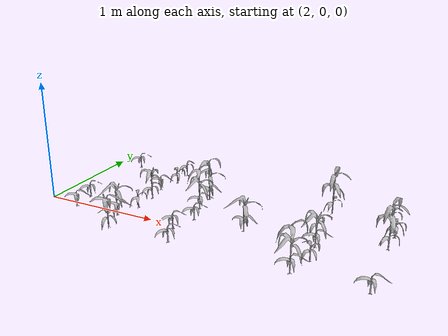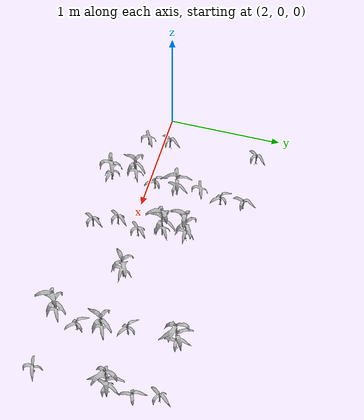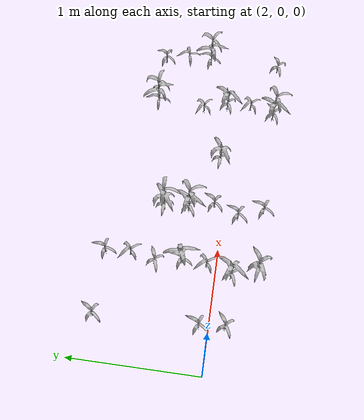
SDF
<sdf version="1.7">
 <world name="default">
  <model name="maize_2.363088277416104_-0.1200000000000001">
   <static>1</static>
   <link name="link">
    <inertial>
     <mass>0.2</mass>
     <inertia>
      <ixx>0.166667</ixx>
      <ixy>0</ixy>
      <ixz>0</ixz>
      <iyy>0.166667</iyy>
      <iyz>0</iyz>
      <izz>0.166667</izz>
     </inertia>
    </inertial>
    <collision name="collision">
     <geometry><mesh><uri>model://corn_3/meshes/corn.dae</uri><scale>0.25 0.25 0.25</scale></mesh></geometry>
     <surface>
      <friction><ode><mu>0</mu><mu2>0</mu2></ode></friction>
      <contact><ode><kp>0</kp><kd>0</kd><max_vel>0</max_vel><min_depth>0.002</min_depth></ode></contact>
     </surface>
    </collision>
    <visual name="visual">
     <geometry><mesh><uri>model://corn_3/meshes/corn.dae</uri><scale>0.25 0.25 0.25</scale></mesh></geometry>
    </visual>
    <velocity_decay><linear>0</linear><angular>0</angular></velocity_decay>
   </link>
   <pose>2.36309 -0.12 0.05 0 -0 0.562316</pose>
  </model>
  <model name="maize_2.345610720444071_0.07500000000000018">
   <static>1</static>
   <link name="link">
    <inertial>
     <mass>0.2</mass>
     <inertia>
      <ixx>0.166667</ixx>
      <ixy>0</ixy>
      <ixz>0</ixz>
      <iyy>0.166667</iyy>
      <iyz>0</iyz>
      <izz>0.166667</izz>
     </inertia>
    </inertial>
    <collision name="collision">
     <geometry><mesh><uri>model://corn_3/meshes/corn.dae</uri><scale>0.25 0.25 0.25</scale></mesh></geometry>
     <surface>
      <friction><ode><mu>0</mu><mu2>0</mu2></ode></friction>
      <contact><ode><kp>0</kp><kd>0</kd><max_vel>0</max_vel><min_depth>0.002</min_depth></ode></contact>
     </surface>
    </collision>
    <visual name="visual">
     <geometry><mesh><uri>model://corn_3/meshes/corn.dae</uri><scale>0.25 0.25 0.25</scale></mesh></geometry>
    </visual>
    <velocity_decay><linear>0</linear><angular>0</angular></velocity_decay>
   </link>
   <pose>2.34561 0.075 0.05 0 -0 1.12158</pose>
  </model>
  <model name="maize_2.327715834010743_0.8550000000000004">
   <static>1</static>
   <link name="link">
    <inertial>
     <mass>0.2</mass>
     <inertia>
      <ixx>0.166667</ixx>
      <ixy>0</ixy>
      <ixz>0</ixz>
      <iyy>0.166667</iyy>
      <iyz>0</iyz>
      <izz>0.166667</izz>
     </inertia>
    </inertial>
    <collision name="collision">
     <geometry><mesh><uri>model://corn_3/meshes/corn.dae</uri><scale>0.25 0.25 0.25</scale></mesh></geometry>
     <surface>
      <friction><ode><mu>0</mu><mu2>0</mu2></ode></friction>
      <contact><ode><kp>0</kp><kd>0</kd><max_vel>0</max_vel><min_depth>0.002</min_depth></ode></contact>
     </surface>
    </collision>
    <visual name="visual">
     <geometry><mesh><uri>model://corn_3/meshes/corn.dae</uri><scale>0.25 0.25 0.25</scale></mesh></geometry>
    </visual>
    <velocity_decay><linear>0</linear><angular>0</angular></velocity_decay>
   </link>
   <pose>2.32772 0.855 0.05 0 -0 0.952764</pose>
  </model>
  <model name="maize_2.832286608606112_-0.3149999999999995">
   <static>1</static>
   <link name="link">
    <inertial>
     <mass>0.2</mass>
     <inertia>
      <ixx>0.166667</ixx>
      <ixy>0</ixy>
      <ixz>0</ixz>
      <iyy>0.166667</iyy>
      <iyz>0</iyz>
      <izz>0.166667</izz>
     </inertia>
    </inertial>
    <collision name="collision">
     <geometry><mesh><uri>model://corn_4/meshes/corn.dae</uri><scale>0.25 0.25 0.25</scale></mesh></geometry>
     <surface>
      <friction><ode><mu>0</mu><mu2>0</mu2></ode></friction>
      <contact><ode><kp>0</kp><kd>0</kd><max_vel>0</max_vel><min_depth>0.002</min_depth></ode></contact>
     </surface>
    </collision>
    <visual name="visual">
     <geometry><mesh><uri>model://corn_4/meshes/corn.dae</uri><scale>0.25 0.25 0.25</scale></mesh></geometry>
    </visual>
    <velocity_decay><linear>0</linear><angular>0</angular></velocity_decay>
   </link>
   <pose>2.83229 -0.315 0.05 0 -0 2.99597</pose>
  </model>
  <model name="maize_2.767374050194413_-0.1200000000000001">
   <static>1</static>
   <link name="link">
    <inertial>
     <mass>0.2</mass>
     <inertia>
      <ixx>0.166667</ixx>
      <ixy>0</ixy>
      <ixz>0</ixz>
      <iyy>0.166667</iyy>
      <iyz>0</iyz>
      <izz>0.166667</izz>
     </inertia>
    </inertial>
    <collision name="collision">
     <geometry><mesh><uri>model://corn_4/meshes/corn.dae</uri><scale>0.25 0.25 0.25</scale></mesh></geometry>
     <surface>
      <friction><ode><mu>0</mu><mu2>0</mu2></ode></friction>
      <contact><ode><kp>0</kp><kd>0</kd><max_vel>0</max_vel><min_depth>0.002</min_depth></ode></contact>
     </surface>
    </collision>
    <visual name="visual">
     <geometry><mesh><uri>model://corn_4/meshes/corn.dae</uri><scale>0.25 0.25 0.25</scale></mesh></geometry>
    </visual>
    <velocity_decay><linear>0</linear><angular>0</angular></velocity_decay>
   </link>
   <pose>2.76737 -0.12 0.05 0 -0 0.45852</pose>
  </model>
  <model name="maize_2.832073925729919_0.07500000000000018">
   <static>1</static>
   <link name="link">
    <inertial>
     <mass>0.2</mass>
     <inertia>
      <ixx>0.166667</ixx>
      <ixy>0</ixy>
      <ixz>0</ixz>
      <iyy>0.166667</iyy>
      <iyz>0</iyz>
      <izz>0.166667</izz>
     </inertia>
    </inertial>
    <collision name="collision">
     <geometry><mesh><uri>model://corn_3/meshes/corn.dae</uri><scale>0.25 0.25 0.25</scale></mesh></geometry>
     <surface>
      <friction><ode><mu>0</mu><mu2>0</mu2></ode></friction>
      <contact><ode><kp>0</kp><kd>0</kd><max_vel>0</max_vel><min_depth>0.002</min_depth></ode></contact>
     </surface>
    </collision>
    <visual name="visual">
     <geometry><mesh><uri>model://corn_3/meshes/corn.dae</uri><scale>0.25 0.25 0.25</scale></mesh></geometry>
    </visual>
    <velocity_decay><linear>0</linear><angular>0</angular></velocity_decay>
   </link>
   <pose>2.83207 0.075 0.05 0 -0 2.25059</pose>
  </model>
  <model name="maize_2.8392892796470264_0.27000000000000046">
   <static>1</static>
   <link name="link">
    <inertial>
     <mass>0.2</mass>
     <inertia>
      <ixx>0.166667</ixx>
      <ixy>0</ixy>
      <ixz>0</ixz>
      <iyy>0.166667</iyy>
      <iyz>0</iyz>
      <izz>0.166667</izz>
     </inertia>
    </inertial>
    <collision name="collision">
     <geometry><mesh><uri>model://corn_4/meshes/corn.dae</uri><scale>0.25 0.25 0.25</scale></mesh></geometry>
     <surface>
      <friction><ode><mu>0</mu><mu2>0</mu2></ode></friction>
      <contact><ode><kp>0</kp><kd>0</kd><max_vel>0</max_vel><min_depth>0.002</min_depth></ode></contact>
     </surface>
    </collision>
    <visual name="visual">
     <geometry><mesh><uri>model://corn_4/meshes/corn.dae</uri><scale>0.25 0.25 0.25</scale></mesh></geometry>
    </visual>
    <velocity_decay><linear>0</linear><angular>0</angular></velocity_decay>
   </link>
   <pose>2.83929 0.27 0.05 0 -0 1.24749</pose>
  </model>
  <model name="maize_2.800329854441687_0.46500000000000075">
   <static>1</static>
   <link name="link">
    <inertial>
     <mass>0.2</mass>
     <inertia>
      <ixx>0.166667</ixx>
      <ixy>0</ixy>
      <ixz>0</ixz>
      <iyy>0.166667</iyy>
      <iyz>0</iyz>
      <izz>0.166667</izz>
     </inertia>
    </inertial>
    <collision name="collision">
     <geometry><mesh><uri>model://corn_3/meshes/corn.dae</uri><scale>0.25 0.25 0.25</scale></mesh></geometry>
     <surface>
      <friction><ode><mu>0</mu><mu2>0</mu2></ode></friction>
      <contact><ode><kp>0</kp><kd>0</kd><max_vel>0</max_vel><min_depth>0.002</min_depth></ode></contact>
     </surface>
    </collision>
    <visual name="visual">
     <geometry><mesh><uri>model://corn_3/meshes/corn.dae</uri><scale>0.25 0.25 0.25</scale></mesh></geometry>
    </visual>
    <velocity_decay><linear>0</linear><angular>0</angular></velocity_decay>
   </link>
   <pose>2.80033 0.465 0.05 0 -0 0.377611</pose>
  </model>
  <model name="maize_2.8536793448033824_0.6600000000000001">
   <static>1</static>
   <link name="link">
    <inertial>
     <mass>0.2</mass>
     <inertia>
      <ixx>0.166667</ixx>
      <ixy>0</ixy>
      <ixz>0</ixz>
      <iyy>0.166667</iyy>
      <iyz>0</iyz>
      <izz>0.166667</izz>
     </inertia>
    </inertial>
    <collision name="collision">
     <geometry><mesh><uri>model://corn_3/meshes/corn.dae</uri><scale>0.25 0.25 0.25</scale></mesh></geometry>
     <surface>
      <friction><ode><mu>0</mu><mu2>0</mu2></ode></friction>
      <contact><ode><kp>0</kp><kd>0</kd><max_vel>0</max_vel><min_depth>0.002</min_depth></ode></contact>
     </surface>
    </collision>
    <visual name="visual">
     <geometry><mesh><uri>model://corn_3/meshes/corn.dae</uri><scale>0.25 0.25 0.25</scale></mesh></geometry>
    </visual>
    <velocity_decay><linear>0</linear><angular>0</angular></velocity_decay>
   </link>
   <pose>2.85368 0.66 0.05 0 -0 2.35739</pose>
  </model>
  <model name="maize_2.8446264052877477_0.8550000000000004">
   <static>1</static>
   <link name="link">
    <inertial>
     <mass>0.2</mass>
     <inertia>
      <ixx>0.166667</ixx>
      <ixy>0</ixy>
      <ixz>0</ixz>
      <iyy>0.166667</iyy>
      <iyz>0</iyz>
      <izz>0.166667</izz>
     </inertia>
    </inertial>
    <collision name="collision">
     <geometry><mesh><uri>model://corn_3/meshes/corn.dae</uri><scale>0.25 0.25 0.25</scale></mesh></geometry>
     <surface>
      <friction><ode><mu>0</mu><mu2>0</mu2></ode></friction>
      <contact><ode><kp>0</kp><kd>0</kd><max_vel>0</max_vel><min_depth>0.002</min_depth></ode></contact>
     </surface>
    </collision>
    <visual name="visual">
     <geometry><mesh><uri>model://corn_3/meshes/corn.dae</uri><scale>0.25 0.25 0.25</scale></mesh></geometry>
    </visual>
    <velocity_decay><linear>0</linear><angular>0</angular></velocity_decay>
   </link>
   <pose>2.84463 0.855 0.05 0 -0 1.35587</pose>
  </model>
  <model name="maize_3.352274120105074_-0.3149999999999995">
   <static>1</static>
   <link name="link">
    <inertial>
     <mass>0.2</mass>
     <inertia>
      <ixx>0.166667</ixx>
      <ixy>0</ixy>
      <ixz>0</ixz>
      <iyy>0.166667</iyy>
      <iyz>0</iyz>
      <izz>0.166667</izz>
     </inertia>
    </inertial>
    <collision name="collision">
     <geometry><mesh><uri>model://corn_3/meshes/corn.dae</uri><scale>0.25 0.25 0.25</scale></mesh></geometry>
     <surface>
      <friction><ode><mu>0</mu><mu2>0</mu2></ode></friction>
      <contact><ode><kp>0</kp><kd>0</kd><max_vel>0</max_vel><min_depth>0.002</min_depth></ode></contact>
     </surface>
    </collision>
    <visual name="visual">
     <geometry><mesh><uri>model://corn_3/meshes/corn.dae</uri><scale>0.25 0.25 0.25</scale></mesh></geometry>
    </visual>
    <velocity_decay><linear>0</linear><angular>0</angular></velocity_decay>
   </link>
   <pose>3.35227 -0.315 0.05 0 -0 1.11265</pose>
  </model>
  <model name="maize_3.2747439001780636_-0.1200000000000001">
   <static>1</static>
   <link name="link">
    <inertial>
     <mass>0.2</mass>
     <inertia>
      <ixx>0.166667</ixx>
      <ixy>0</ixy>
      <ixz>0</ixz>
      <iyy>0.166667</iyy>
      <iyz>0</iyz>
      <izz>0.166667</izz>
     </inertia>
    </inertial>
    <collision name="collision">
     <geometry><mesh><uri>model://corn_3/meshes/corn.dae</uri><scale>0.25 0.25 0.25</scale></mesh></geometry>
     <surface>
      <friction><ode><mu>0</mu><mu2>0</mu2></ode></friction>
      <contact><ode><kp>0</kp><kd>0</kd><max_vel>0</max_vel><min_depth>0.002</min_depth></ode></contact>
     </surface>
    </collision>
    <visual name="visual">
     <geometry><mesh><uri>model://corn_3/meshes/corn.dae</uri><scale>0.25 0.25 0.25</scale></mesh></geometry>
    </visual>
    <velocity_decay><linear>0</linear><angular>0</angular></velocity_decay>
   </link>
   <pose>3.27474 -0.12 0.05 0 -0 1.00018</pose>
  </model>
  <model name="maize_3.3480955362074294_0.07500000000000018">
   <static>1</static>
   <link name="link">
    <inertial>
     <mass>0.2</mass>
     <inertia>
      <ixx>0.166667</ixx>
      <ixy>0</ixy>
      <ixz>0</ixz>
      <iyy>0.166667</iyy>
      <iyz>0</iyz>
      <izz>0.166667</izz>
     </inertia>
    </inertial>
    <collision name="collision">
     <geometry><mesh><uri>model://corn_3/meshes/corn.dae</uri><scale>0.25 0.25 0.25</scale></mesh></geometry>
     <surface>
      <friction><ode><mu>0</mu><mu2>0</mu2></ode></friction>
      <contact><ode><kp>0</kp><kd>0</kd><max_vel>0</max_vel><min_depth>0.002</min_depth></ode></contact>
     </surface>
    </collision>
    <visual name="visual">
     <geometry><mesh><uri>model://corn_3/meshes/corn.dae</uri><scale>0.25 0.25 0.25</scale></mesh></geometry>
    </visual>
    <velocity_decay><linear>0</linear><angular>0</angular></velocity_decay>
   </link>
   <pose>3.3481 0.075 0.05 0 -0 0.891158</pose>
  </model>
  <model name="maize_3.2912818476247727_0.27000000000000046">
   <static>1</static>
   <link name="link">
    <inertial>
     <mass>0.2</mass>
     <inertia>
      <ixx>0.166667</ixx>
      <ixy>0</ixy>
      <ixz>0</ixz>
      <iyy>0.166667</iyy>
      <iyz>0</iyz>
      <izz>0.166667</izz>
     </inertia>
    </inertial>
    <collision name="collision">
     <geometry><mesh><uri>model://corn_5/meshes/corn.dae</uri><scale>0.25 0.25 0.25</scale></mesh></geometry>
     <surface>
      <friction><ode><mu>0</mu><mu2>0</mu2></ode></friction>
      <contact><ode><kp>0</kp><kd>0</kd><max_vel>0</max_vel><min_depth>0.002</min_depth></ode></contact>
     </surface>
    </collision>
    <visual name="visual">
     <geometry><mesh><uri>model://corn_5/meshes/corn.dae</uri><scale>0.25 0.25 0.25</scale></mesh></geometry>
    </visual>
    <velocity_decay><linear>0</linear><angular>0</angular></velocity_decay>
   </link>
   <pose>3.29128 0.27 0.05 0 -0 0.631057</pose>
  </model>
  <model name="maize_3.2795618943077387_0.46500000000000075">
   <static>1</static>
   <link name="link">
    <inertial>
     <mass>0.2</mass>
     <inertia>
      <ixx>0.166667</ixx>
      <ixy>0</ixy>
      <ixz>0</ixz>
      <iyy>0.166667</iyy>
      <iyz>0</iyz>
      <izz>0.166667</izz>
     </inertia>
    </inertial>
    <collision name="collision">
     <geometry><mesh><uri>model://corn_5/meshes/corn.dae</uri><scale>0.25 0.25 0.25</scale></mesh></geometry>
     <surface>
      <friction><ode><mu>0</mu><mu2>0</mu2></ode></friction>
      <contact><ode><kp>0</kp><kd>0</kd><max_vel>0</max_vel><min_depth>0.002</min_depth></ode></contact>
     </surface>
    </collision>
    <visual name="visual">
     <geometry><mesh><uri>model://corn_5/meshes/corn.dae</uri><scale>0.25 0.25 0.25</scale></mesh></geometry>
    </visual>
    <velocity_decay><linear>0</linear><angular>0</angular></velocity_decay>
   </link>
   <pose>3.27956 0.465 0.05 0 -0 0.057801</pose>
  </model>
  <model name="maize_3.7641582960462827_0.07500000000000018">
   <static>1</static>
   <link name="link">
    <inertial>
     <mass>0.2</mass>
     <inertia>
      <ixx>0.166667</ixx>
      <ixy>0</ixy>
      <ixz>0</ixz>
      <iyy>0.166667</iyy>
      <iyz>0</iyz>
      <izz>0.166667</izz>
     </inertia>
    </inertial>
    <collision name="collision">
     <geometry><mesh><uri>model://corn_4/meshes/corn.dae</uri><scale>0.25 0.25 0.25</scale></mesh></geometry>
     <surface>
      <friction><ode><mu>0</mu><mu2>0</mu2></ode></friction>
      <contact><ode><kp>0</kp><kd>0</kd><max_vel>0</max_vel><min_depth>0.002</min_depth></ode></contact>
     </surface>
    </collision>
    <visual name="visual">
     <geometry><mesh><uri>model://corn_4/meshes/corn.dae</uri><scale>0.25 0.25 0.25</scale></mesh></geometry>
    </visual>
    <velocity_decay><linear>0</linear><angular>0</angular></velocity_decay>
   </link>
   <pose>3.76416 0.075 0.05 0 -0 0.011835</pose>
  </model>
  <model name="maize_4.255583918500637_-0.3149999999999995">
   <static>1</static>
   <link name="link">
    <inertial>
     <mass>0.2</mass>
     <inertia>
      <ixx>0.166667</ixx>
      <ixy>0</ixy>
      <ixz>0</ixz>
      <iyy>0.166667</iyy>
      <iyz>0</iyz>
      <izz>0.166667</izz>
     </inertia>
    </inertial>
    <collision name="collision">
     <geometry><mesh><uri>model://corn_5/meshes/corn.dae</uri><scale>0.25 0.25 0.25</scale></mesh></geometry>
     <surface>
      <friction><ode><mu>0</mu><mu2>0</mu2></ode></friction>
      <contact><ode><kp>0</kp><kd>0</kd><max_vel>0</max_vel><min_depth>0.002</min_depth></ode></contact>
     </surface>
    </collision>
    <visual name="visual">
     <geometry><mesh><uri>model://corn_5/meshes/corn.dae</uri><scale>0.25 0.25 0.25</scale></mesh></geometry>
    </visual>
    <velocity_decay><linear>0</linear><angular>0</angular></velocity_decay>
   </link>
   <pose>4.25558 -0.315 0.05 0 -0 0.541471</pose>
  </model>
  <model name="maize_4.3276872118020275_-0.1200000000000001">
   <static>1</static>
   <link name="link">
    <inertial>
     <mass>0.2</mass>
     <inertia>
      <ixx>0.166667</ixx>
      <ixy>0</ixy>
      <ixz>0</ixz>
      <iyy>0.166667</iyy>
      <iyz>0</iyz>
      <izz>0.166667</izz>
     </inertia>
    </inertial>
    <collision name="collision">
     <geometry><mesh><uri>model://corn_3/meshes/corn.dae</uri><scale>0.25 0.25 0.25</scale></mesh></geometry>
     <surface>
      <friction><ode><mu>0</mu><mu2>0</mu2></ode></friction>
      <contact><ode><kp>0</kp><kd>0</kd><max_vel>0</max_vel><min_depth>0.002</min_depth></ode></contact>
     </surface>
    </collision>
    <visual name="visual">
     <geometry><mesh><uri>model://corn_3/meshes/corn.dae</uri><scale>0.25 0.25 0.25</scale></mesh></geometry>
    </visual>
    <velocity_decay><linear>0</linear><angular>0</angular></velocity_decay>
   </link>
   <pose>4.32769 -0.12 0.05 0 -0 2.38085</pose>
  </model>
  <model name="maize_4.3057421469886465_0.07500000000000018">
   <static>1</static>
   <link name="link">
    <inertial>
     <mass>0.2</mass>
     <inertia>
      <ixx>0.166667</ixx>
      <ixy>0</ixy>
      <ixz>0</ixz>
      <iyy>0.166667</iyy>
      <iyz>0</iyz>
      <izz>0.166667</izz>
     </inertia>
    </inertial>
    <collision name="collision">
     <geometry><mesh><uri>model://corn_4/meshes/corn.dae</uri><scale>0.25 0.25 0.25</scale></mesh></geometry>
     <surface>
      <friction><ode><mu>0</mu><mu2>0</mu2></ode></friction>
      <contact><ode><kp>0</kp><kd>0</kd><max_vel>0</max_vel><min_depth>0.002</min_depth></ode></contact>
     </surface>
    </collision>
    <visual name="visual">
     <geometry><mesh><uri>model://corn_4/meshes/corn.dae</uri><scale>0.25 0.25 0.25</scale></mesh></geometry>
    </visual>
    <velocity_decay><linear>0</linear><angular>0</angular></velocity_decay>
   </link>
   <pose>4.30574 0.075 0.05 0 -0 0.464275</pose>
  </model>
  <model name="maize_4.258197585365786_0.27000000000000046">
   <static>1</static>
   <link name="link">
    <inertial>
     <mass>0.2</mass>
     <inertia>
      <ixx>0.166667</ixx>
      <ixy>0</ixy>
      <ixz>0</ixz>
      <iyy>0.166667</iyy>
      <iyz>0</iyz>
      <izz>0.166667</izz>
     </inertia>
    </inertial>
    <collision name="collision">
     <geometry><mesh><uri>model://corn_3/meshes/corn.dae</uri><scale>0.25 0.25 0.25</scale></mesh></geometry>
     <surface>
      <friction><ode><mu>0</mu><mu2>0</mu2></ode></friction>
      <contact><ode><kp>0</kp><kd>0</kd><max_vel>0</max_vel><min_depth>0.002</min_depth></ode></contact>
     </surface>
    </collision>
    <visual name="visual">
     <geometry><mesh><uri>model://corn_3/meshes/corn.dae</uri><scale>0.25 0.25 0.25</scale></mesh></geometry>
    </visual>
    <velocity_decay><linear>0</linear><angular>0</angular></velocity_decay>
   </link>
   <pose>4.2582 0.27 0.05 0 -0 2.59099</pose>
  </model>
  <model name="maize_4.271879269762409_0.6600000000000001">
   <static>1</static>
   <link name="link">
    <inertial>
     <mass>0.2</mass>
     <inertia>
      <ixx>0.166667</ixx>
      <ixy>0</ixy>
      <ixz>0</ixz>
      <iyy>0.166667</iyy>
      <iyz>0</iyz>
      <izz>0.166667</izz>
     </inertia>
    </inertial>
    <collision name="collision">
     <geometry><mesh><uri>model://corn_5/meshes/corn.dae</uri><scale>0.25 0.25 0.25</scale></mesh></geometry>
     <surface>
      <friction><ode><mu>0</mu><mu2>0</mu2></ode></friction>
      <contact><ode><kp>0</kp><kd>0</kd><max_vel>0</max_vel><min_depth>0.002</min_depth></ode></contact>
     </surface>
    </collision>
    <visual name="visual">
     <geometry><mesh><uri>model://corn_5/meshes/corn.dae</uri><scale>0.25 0.25 0.25</scale></mesh></geometry>
    </visual>
    <velocity_decay><linear>0</linear><angular>0</angular></velocity_decay>
   </link>
   <pose>4.27188 0.66 0.05 0 -0 1.5907</pose>
  </model>
  <model name="maize_4.757258042771437_-0.3149999999999995">
   <static>1</static>
   <link name="link">
    <inertial>
     <mass>0.2</mass>
     <inertia>
      <ixx>0.166667</ixx>
      <ixy>0</ixy>
      <ixz>0</ixz>
      <iyy>0.166667</iyy>
      <iyz>0</iyz>
      <izz>0.166667</izz>
     </inertia>
    </inertial>
    <collision name="collision">
     <geometry><mesh><uri>model://corn_3/meshes/corn.dae</uri><scale>0.25 0.25 0.25</scale></mesh></geometry>
     <surface>
      <friction><ode><mu>0</mu><mu2>0</mu2></ode></friction>
      <contact><ode><kp>0</kp><kd>0</kd><max_vel>0</max_vel><min_depth>0.002</min_depth></ode></contact>
     </surface>
    </collision>
    <visual name="visual">
     <geometry><mesh><uri>model://corn_3/meshes/corn.dae</uri><scale>0.25 0.25 0.25</scale></mesh></geometry>
    </visual>
    <velocity_decay><linear>0</linear><angular>0</angular></velocity_decay>
   </link>
   <pose>4.75726 -0.315 0.05 0 -0 0.37757</pose>
  </model>
  <model name="maize_4.764688985138948_0.27000000000000046">
   <static>1</static>
   <link name="link">
    <inertial>
     <mass>0.2</mass>
     <inertia>
      <ixx>0.166667</ixx>
      <ixy>0</ixy>
      <ixz>0</ixz>
      <iyy>0.166667</iyy>
      <iyz>0</iyz>
      <izz>0.166667</izz>
     </inertia>
    </inertial>
    <collision name="collision">
     <geometry><mesh><uri>model://corn_5/meshes/corn.dae</uri><scale>0.25 0.25 0.25</scale></mesh></geometry>
     <surface>
      <friction><ode><mu>0</mu><mu2>0</mu2></ode></friction>
      <contact><ode><kp>0</kp><kd>0</kd><max_vel>0</max_vel><min_depth>0.002</min_depth></ode></contact>
     </surface>
    </collision>
    <visual name="visual">
     <geometry><mesh><uri>model://corn_5/meshes/corn.dae</uri><scale>0.25 0.25 0.25</scale></mesh></geometry>
    </visual>
    <velocity_decay><linear>0</linear><angular>0</angular></velocity_decay>
   </link>
   <pose>4.76469 0.27 0.05 0 -0 1.24283</pose>
  </model>
  <model name="maize_4.778010349974121_0.46500000000000075">
   <static>1</static>
   <link name="link">
    <inertial>
     <mass>0.2</mass>
     <inertia>
      <ixx>0.166667</ixx>
      <ixy>0</ixy>
      <ixz>0</ixz>
      <iyy>0.166667</iyy>
      <iyz>0</iyz>
      <izz>0.166667</izz>
     </inertia>
    </inertial>
    <collision name="collision">
     <geometry><mesh><uri>model://corn_3/meshes/corn.dae</uri><scale>0.25 0.25 0.25</scale></mesh></geometry>
     <surface>
      <friction><ode><mu>0</mu><mu2>0</mu2></ode></friction>
      <contact><ode><kp>0</kp><kd>0</kd><max_vel>0</max_vel><min_depth>0.002</min_depth></ode></contact>
     </surface>
    </collision>
    <visual name="visual">
     <geometry><mesh><uri>model://corn_3/meshes/corn.dae</uri><scale>0.25 0.25 0.25</scale></mesh></geometry>
    </visual>
    <velocity_decay><linear>0</linear><angular>0</angular></velocity_decay>
   </link>
   <pose>4.77801 0.465 0.05 0 -0 1.84057</pose>
  </model>
  <model name="maize_4.7324701458363245_0.6600000000000001">
   <static>1</static>
   <link name="link">
    <inertial>
     <mass>0.2</mass>
     <inertia>
      <ixx>0.166667</ixx>
      <ixy>0</ixy>
      <ixz>0</ixz>
      <iyy>0.166667</iyy>
      <iyz>0</iyz>
      <izz>0.166667</izz>
     </inertia>
    </inertial>
    <collision name="collision">
     <geometry><mesh><uri>model://corn_3/meshes/corn.dae</uri><scale>0.25 0.25 0.25</scale></mesh></geometry>
     <surface>
      <friction><ode><mu>0</mu><mu2>0</mu2></ode></friction>
      <contact><ode><kp>0</kp><kd>0</kd><max_vel>0</max_vel><min_depth>0.002</min_depth></ode></contact>
     </surface>
    </collision>
    <visual name="visual">
     <geometry><mesh><uri>model://corn_3/meshes/corn.dae</uri><scale>0.25 0.25 0.25</scale></mesh></geometry>
    </visual>
    <velocity_decay><linear>0</linear><angular>0</angular></velocity_decay>
   </link>
   <pose>4.73247 0.66 0.05 0 -0 1.05373</pose>
  </model>
 </world>
</sdf>
